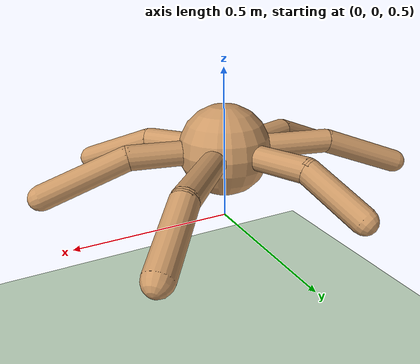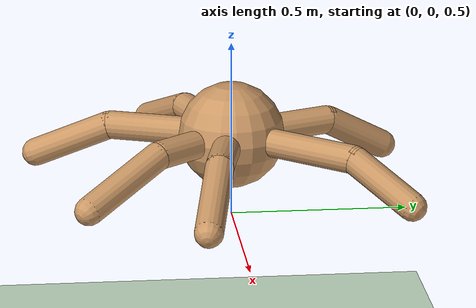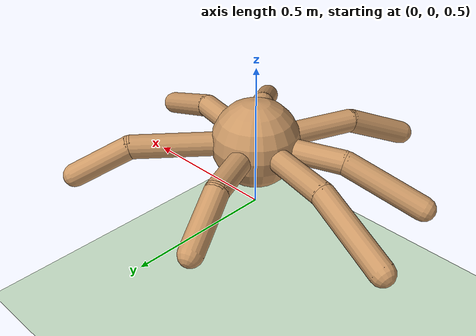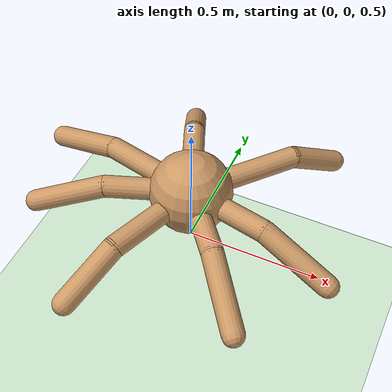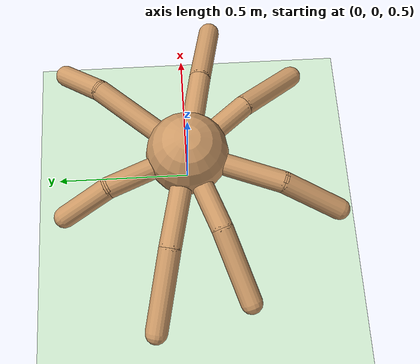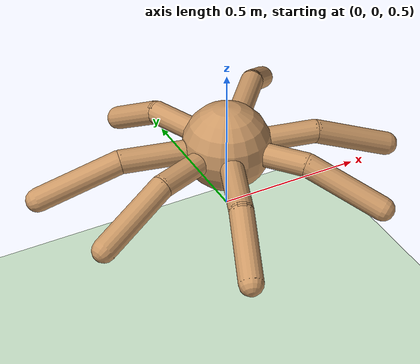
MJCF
<mujoco model="mutant_ant">
  <compiler angle="degree" coordinate="local" inertiafromgeom="true"/>
  <option integrator="RK4" timestep="0.01"/>
  <default>
    <joint armature="1" damping="1" limited="true"/>
    <geom conaffinity="1" condim="3" density="5.0" friction="1 0.5 0.5" margin="0.01" rgba="0.8 0.6 0.4 1"/>
  </default>
  <asset>
    <texture builtin="checker" height="512" name="texplane" rgb1=".2 .3 .4" rgb2=".1 0.15 0.2" type="2d" width="512"/>
    <material name="MatPlane" reflectance="0.5" shininess="1" specular="1" texrepeat="60 60" texture="texplane"/>
  </asset>
  <worldbody>
    <light cutoff="100" diffuse="1 1 1" dir="-0 0 -1.3" directional="true" exponent="1" pos="0 0 1.3" specular=".1 .1 .1"/>
    <geom conaffinity="1" condim="3" material="MatPlane" name="floor" pos="0 0 0" rgba="0.8 0.9 0.8 1" size="40 40 40" type="plane"/>
    <body name="torso" pos="0 0 0.734">
      <camera name="track" mode="trackcom" pos="0 -3 2.0" euler="60 0 0"/>
      <freejoint name="root"/>
      <geom name="torso_geom" pos="0 0 0" size="0.15" type="sphere"/>
      <body name="leg_0" pos="0 0 0" euler="0 0 -11.773">
        <geom fromto="0.0 0.0 0.0 0.1 0.0 0.0" name="aux_0_geom" size="0.04" type="capsule"/>
        <body name="leg_0_aux" pos="0.1 0.0 0">
          <joint axis="0 0 1" name="hip_0" pos="0.0 0.0 0.0" range="-42.738 38.712" type="hinge"/>
          <geom fromto="0.0 0.0 0.0 0.208 0.0 0.0" name="thigh_0_geom" size="0.04" type="capsule"/>
          <body pos="0.208 0.0 0" name="leg_0_ankle">
            <joint axis="0 1 0" name="ankle_0" pos="0.0 0.0 0.0" range="28.455 58.121" type="hinge"/>
            <geom fromto="0.0 0.0 0.0 0.260 0.0 -0.1" name="calf_0_geom" size="0.04" type="capsule"/>
          </body>
        </body>
      </body>
      <body name="leg_1" pos="0 0 0" euler="0 0 49.246">
        <geom fromto="0.0 0.0 0.0 0.1 0.0 0.0" name="aux_1_geom" size="0.04" type="capsule"/>
        <body name="leg_1_aux" pos="0.1 0.0 0">
          <joint axis="0 0 1" name="hip_1" pos="0.0 0.0 0.0" range="-25.651 33.128" type="hinge"/>
          <geom fromto="0.0 0.0 0.0 0.312 0.0 0.0" name="thigh_1_geom" size="0.04" type="capsule"/>
          <body pos="0.312 0.0 0" name="leg_1_ankle">
            <joint axis="0 1 0" name="ankle_1" pos="0.0 0.0 0.0" range="40.087 81.465" type="hinge"/>
            <geom fromto="0.0 0.0 0.0 0.189 0.0 -0.1" name="calf_1_geom" size="0.04" type="capsule"/>
          </body>
        </body>
      </body>
      <body name="leg_2" pos="0 0 0" euler="0 0 112.246">
        <geom fromto="0.0 0.0 0.0 0.1 0.0 0.0" name="aux_2_geom" size="0.04" type="capsule"/>
        <body name="leg_2_aux" pos="0.1 0.0 0">
          <joint axis="0 0 1" name="hip_2" pos="0.0 0.0 0.0" range="-28.661 32.983" type="hinge"/>
          <geom fromto="0.0 0.0 0.0 0.211 0.0 0.0" name="thigh_2_geom" size="0.04" type="capsule"/>
          <body pos="0.211 0.0 0" name="leg_2_ankle">
            <joint axis="0 1 0" name="ankle_2" pos="0.0 0.0 0.0" range="41.726 87.144" type="hinge"/>
            <geom fromto="0.0 0.0 0.0 0.182 0.0 -0.1" name="calf_2_geom" size="0.04" type="capsule"/>
          </body>
        </body>
      </body>
      <body name="leg_3" pos="0 0 0" euler="0 0 167.259">
        <geom fromto="0.0 0.0 0.0 0.1 0.0 0.0" name="aux_3_geom" size="0.04" type="capsule"/>
        <body name="leg_3_aux" pos="0.1 0.0 0">
          <joint axis="0 0 1" name="hip_3" pos="0.0 0.0 0.0" range="-22.314 17.550" type="hinge"/>
          <geom fromto="0.0 0.0 0.0 0.259 0.0 0.0" name="thigh_3_geom" size="0.04" type="capsule"/>
          <body pos="0.259 0.0 0" name="leg_3_ankle">
            <joint axis="0 1 0" name="ankle_3" pos="0.0 0.0 0.0" range="29.091 70.088" type="hinge"/>
            <geom fromto="0.0 0.0 0.0 0.275 0.0 -0.1" name="calf_3_geom" size="0.04" type="capsule"/>
          </body>
        </body>
      </body>
      <body name="leg_4" pos="0 0 0" euler="0 0 200.151">
        <geom fromto="0.0 0.0 0.0 0.1 0.0 0.0" name="aux_4_geom" size="0.04" type="capsule"/>
        <body name="leg_4_aux" pos="0.1 0.0 0">
          <joint axis="0 0 1" name="hip_4" pos="0.0 0.0 0.0" range="-31.634 33.828" type="hinge"/>
          <geom fromto="0.0 0.0 0.0 0.208 0.0 0.0" name="thigh_4_geom" size="0.04" type="capsule"/>
          <body pos="0.208 0.0 0" name="leg_4_ankle">
            <joint axis="0 1 0" name="ankle_4" pos="0.0 0.0 0.0" range="28.455 58.121" type="hinge"/>
            <geom fromto="0.0 0.0 0.0 0.260 0.0 -0.1" name="calf_4_geom" size="0.04" type="capsule"/>
          </body>
        </body>
      </body>
      <body name="leg_5" pos="0 0 0" euler="0 0 249.024">
        <geom fromto="0.0 0.0 0.0 0.1 0.0 0.0" name="aux_5_geom" size="0.04" type="capsule"/>
        <body name="leg_5_aux" pos="0.1 0.0 0">
          <joint axis="0 0 1" name="hip_5" pos="0.0 0.0 0.0" range="-34.138 25.559" type="hinge"/>
          <geom fromto="0.0 0.0 0.0 0.260 0.0 0.0" name="thigh_5_geom" size="0.04" type="capsule"/>
          <body pos="0.260 0.0 0" name="leg_5_ankle">
            <joint axis="0 1 0" name="ankle_5" pos="0.0 0.0 0.0" range="34.793 58.003" type="hinge"/>
            <geom fromto="0.0 0.0 0.0 0.223 0.0 -0.1" name="calf_5_geom" size="0.04" type="capsule"/>
          </body>
        </body>
      </body>
      <body name="leg_6" pos="0 0 0" euler="0 0 309.036">
        <geom fromto="0.0 0.0 0.0 0.1 0.0 0.0" name="aux_6_geom" size="0.04" type="capsule"/>
        <body name="leg_6_aux" pos="0.1 0.0 0">
          <joint axis="0 0 1" name="hip_6" pos="0.0 0.0 0.0" range="-24.169 20.900" type="hinge"/>
          <geom fromto="0.0 0.0 0.0 0.182 0.0 0.0" name="thigh_6_geom" size="0.04" type="capsule"/>
          <body pos="0.182 0.0 0" name="leg_6_ankle">
            <joint axis="0 1 0" name="ankle_6" pos="0.0 0.0 0.0" range="24.849 62.894" type="hinge"/>
            <geom fromto="0.0 0.0 0.0 0.261 0.0 -0.1" name="calf_6_geom" size="0.04" type="capsule"/>
          </body>
        </body>
      </body>
    </body>
  </worldbody>
  <actuator>
    <motor ctrllimited="true" ctrlrange="-1.0 1.0" joint="hip_0" gear="30"/>
    <motor ctrllimited="true" ctrlrange="-1.0 1.0" joint="ankle_0" gear="30"/>
    <motor ctrllimited="true" ctrlrange="-1.0 1.0" joint="hip_1" gear="30"/>
    <motor ctrllimited="true" ctrlrange="-1.0 1.0" joint="ankle_1" gear="30"/>
    <motor ctrllimited="true" ctrlrange="-1.0 1.0" joint="hip_2" gear="30"/>
    <motor ctrllimited="true" ctrlrange="-1.0 1.0" joint="ankle_2" gear="30"/>
    <motor ctrllimited="true" ctrlrange="-1.0 1.0" joint="hip_3" gear="30"/>
    <motor ctrllimited="true" ctrlrange="-1.0 1.0" joint="ankle_3" gear="30"/>
    <motor ctrllimited="true" ctrlrange="-1.0 1.0" joint="hip_4" gear="30"/>
    <motor ctrllimited="true" ctrlrange="-1.0 1.0" joint="ankle_4" gear="30"/>
    <motor ctrllimited="true" ctrlrange="-1.0 1.0" joint="hip_5" gear="30"/>
    <motor ctrllimited="true" ctrlrange="-1.0 1.0" joint="ankle_5" gear="30"/>
    <motor ctrllimited="true" ctrlrange="-1.0 1.0" joint="hip_6" gear="30"/>
    <motor ctrllimited="true" ctrlrange="-1.0 1.0" joint="ankle_6" gear="30"/>
  </actuator>
</mujoco>
